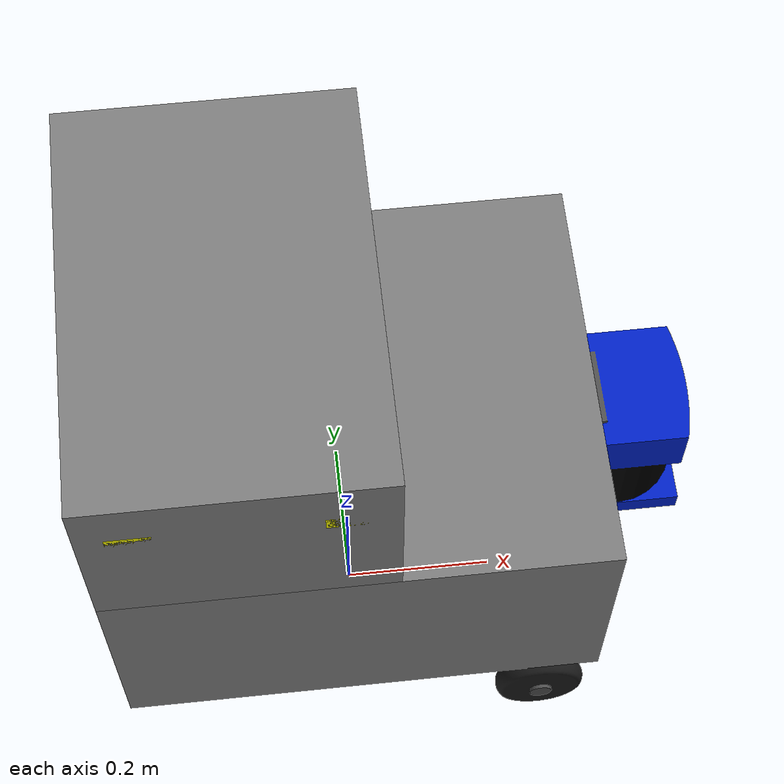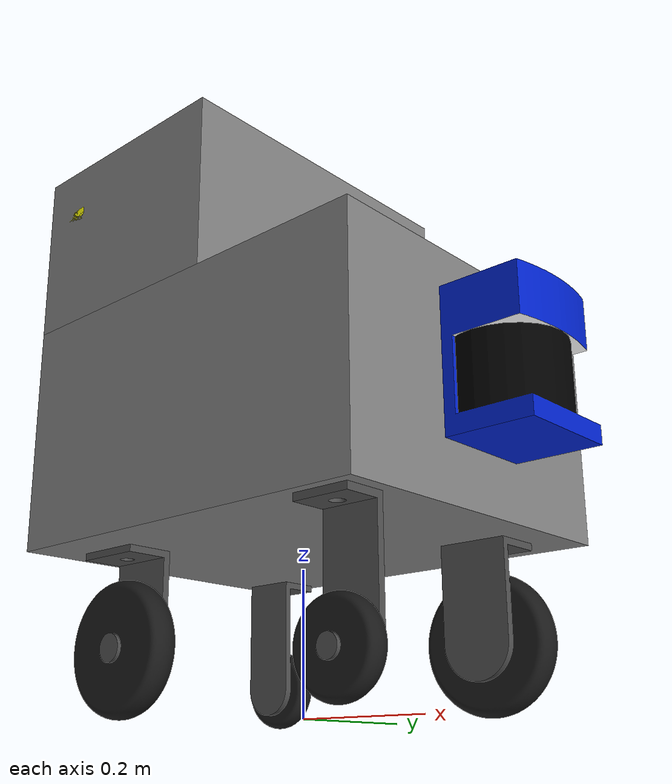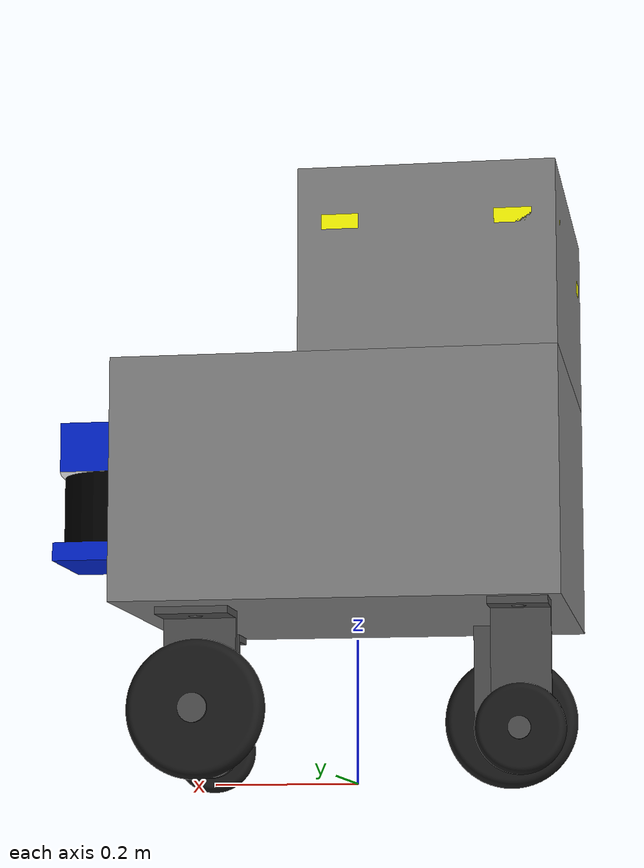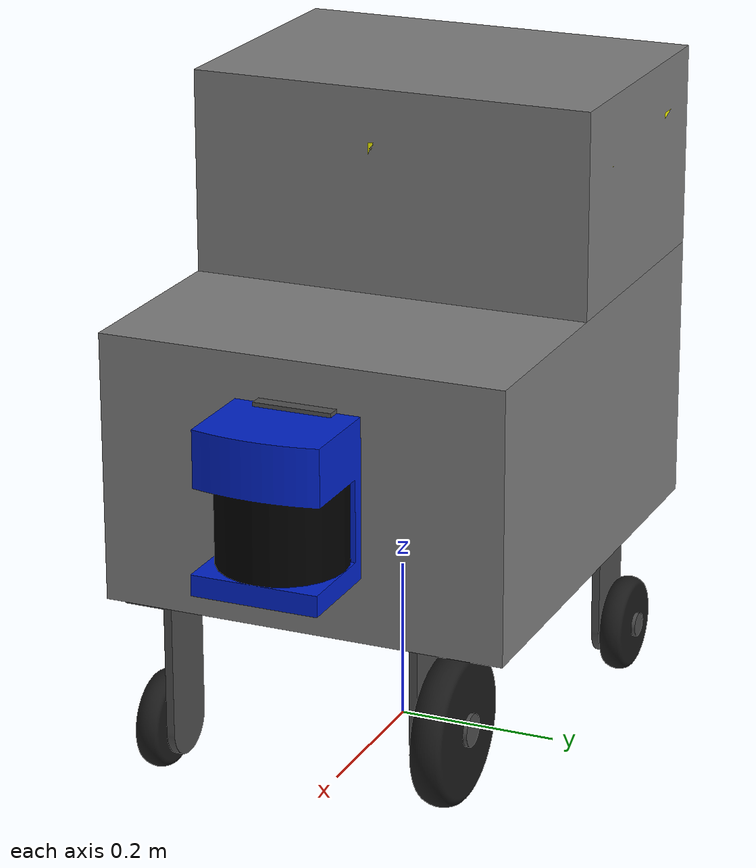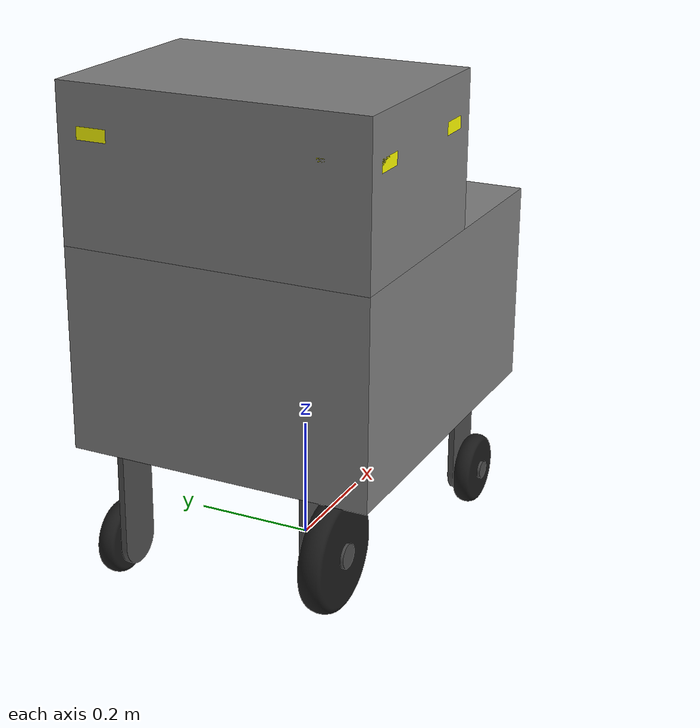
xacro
<?xml version="1.0"?>

<!-- this xacro loads the mobrob robot urdf withouth the gazebo addons -->

<robot name="mobrob_robin" xmlns:xacro="http://ros.org/wiki/xacro">

  <!-- this property deactivates the simulation related macros -->
  <xacro:property name="simulated" value="0" />

  <xacro:property name="ofx" value="0" />
  <xacro:property name="ofy" value="0" />
  <xacro:property name="ofz" value="0" />

  <!-- load the mobrob urdf xacro -->
  <xacro:include filename="$(find mobrob_robin_description)/robots/mobrob.urdf.xacro" />

</robot>

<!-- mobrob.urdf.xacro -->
<!-- this file builds the mobrob urdf via xacro macros -->
<!-- it is used for the real and simulated robot urdf model -->

<robot name="mobrob_robin" xmlns:xacro="http://ros.org/wiki/xacro">

  <xacro:include filename="$(find mobrob_robin_description)/urdf/mobrob_robin.library.xacro" />

  <!-- load the base of the robot   -->
  <xacro:base />

  <!-- load the sick pls 200 -->
  <xacro:sensor_pls200 />

  <!-- load the ultrasound sensors -->
  <xacro:ultrasound_sensor parent="base_link" number="0">
    <insert_block name="ultrasound_sensor0" />
  </xacro:ultrasound_sensor>
  <xacro:ultrasound_sensor parent="base_link" number="1">
    <insert_block name="ultrasound_sensor1" />
  </xacro:ultrasound_sensor>
  <xacro:ultrasound_sensor parent="base_link" number="2">
    <insert_block name="ultrasound_sensor2" />
  </xacro:ultrasound_sensor>
  <xacro:ultrasound_sensor parent="base_link" number="4">
    <insert_block name="ultrasound_sensor4" />
  </xacro:ultrasound_sensor>
  <xacro:ultrasound_sensor parent="base_link" number="5">
    <insert_block name="ultrasound_sensor5" />
  </xacro:ultrasound_sensor>
  <xacro:ultrasound_sensor parent="base_link" number="6">
    <insert_block name="ultrasound_sensor6" />
  </xacro:ultrasound_sensor>
  <xacro:ultrasound_sensor parent="base_link" number="7">
    <insert_block name="ultrasound_sensor7" />
  </xacro:ultrasound_sensor>

</robot>

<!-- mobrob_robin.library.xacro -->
<!--  The complete mobrob library of xacros for easy reference-->

<robot xmlns:xacro="http://ros.org/wiki/xacro">

  <!-- General -->
  <xacro:include filename="$(find mobrob_robin_description)/urdf/mobrob_robin.common.xacro"/>

  <!-- Propertiers -->
  <xacro:include filename="$(find mobrob_robin_description)/urdf/mobrob_robin.properties.xacro"/>
  <!-- Base -->
  <xacro:include filename="$(find mobrob_robin_description)/urdf/mobrob_robin_base/base.urdf.xacro"/>
  <!-- Laserscanner -->
  <xacro:include filename="$(find mobrob_robin_description)/urdf/sensors/pls200.urdf.xacro"/>
  <!-- Ultrasound -->
  <xacro:include filename="$(find mobrob_robin_description)/urdf/sensors/ultrasound.urdf.xacro"/>

  <!-- load gazebo plugins only for simulation -->
  <xacro:if value="${simulated}">
    <xacro:include filename="$(find mobrob_robin_description)/urdf/mobrob_robin.gazebo.xacro"/>
  </xacro:if>

</robot>

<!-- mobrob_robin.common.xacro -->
<!-- This files defines some common properties -->

<robot xmlns:xacro="http://www.ros.org/wiki/xacro">
	<property name="M_PI" value="3.1415926535897931" />

	<material name="Green">
	  <color rgba="0.0 0.8 0.0 1.0"/>
	</material>

  <material name="White">
	<color rgba="1.0 1.0 1.0 1.0"/>
  </material>

  <material name="Gray_light">
	<color rgba="0.5 0.5 0.5 1.0"/>
  </material>

  <material name="Gray_middle">
	<color rgba="0.3 0.3 0.3 1.0"/>
  </material>

  <material name="Gray_dark">
	<color rgba="0.1 0.1 0.1 1.0"/>
  </material>

</robot>

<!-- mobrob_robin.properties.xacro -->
<!-- This file defines all the used parameters for the urdf model -->

<robot xmlns:xacro="http://ros.org/wiki/xacro">
  <!--                               Base Parameter                                      -->

  <property name="base_height" value="0.23" />
  <property name="base_mass" value="40" /><!--TODO-->
  <property name="base_ixx" value="10" /><!--TODO-->
  <property name="base_iyy" value="10" /><!--TODO-->
  <property name="base_izz" value="0.1" /><!--TODO-->
  <!-- simplified box collision geometry for base_body_1 (lower part) -->
  <property name="base_1_size_x" value="0.6" />
  <property name="base_1_size_y" value="0.5" />
  <property name="base_1_size_z" value="0.33" />
  <!-- simplified box collision geometry for base_body_2 (upper part)-->
  <property name="base_2_size_x" value="0.345" />
  <property name="base_2_size_y" value="0.5" />
  <property name="base_2_size_z" value="0.25" />

  <!--                               Wheel Parameter                                      -->

  <!-- all offset parameters are measured to the base_link fram.
        The base_frame is located at the bottom of the mobrob body in the center-->

  <property name="wheel_rf_offset_x" value="0.242" />
  <property name="wheel_rf_offset_y" value="-0.205" />
  <property name="wheel_rf_offset_z" value="-0.170" />
  <property name="wheel_lb_offset_x" value="-0.242" />
  <property name="wheel_lb_offset_y" value="0.205" />
  <property name="wheel_lb_offset_z" value="-0.170" />

  <property name="wheel_lf_offset_x" value="0.20" />
  <property name="wheel_lf_offset_y" value="0.15" />
  <property name="wheel_lf_offset_z" value="-0.135" />
  <property name="wheel_rb_offset_x" value="-0.20" />
  <property name="wheel_rb_offset_y" value="-0.15" />
  <property name="wheel_rb_offset_z" value="-0.135" />

  <property name="wheel_small_radius" value="0.06" />
  <property name="wheel_small_length" value="0.03" />
  <property name="wheel_small_mass" value="0.5" />
  <property name="wheel_small_ixx" value="0.0001" />
  <property name="wheel_small_iyy" value="0.0001" />
  <property name="wheel_small_izz" value="0.0001" />
  <property name="wheel_big_radius" value="0.095" />
  <property name="wheel_big_length" value="0.04" />
  <property name="wheel_big_mass" value="1.0" />
  <property name="wheel_big_ixx" value="0.0001" />
  <property name="wheel_big_iyy" value="0.001202" />
  <property name="wheel_big_izz" value="0.0001" />

  <!--                               Sensor Parameter                                      -->

    <!--This offset parameter(to the base_link) defines the Position of the Kinect(backside, bottom, middle point)-->
  <property name="kinect_offset_x" value="0.3" />
  <property name="kinect_offset_y" value="0" />
  <property name="kinect_offset_z" value="0.275" />
    <!--This offset parameter(to the Base_arduino_platform) defines the Position of the Kinect2(backside,bottom, middle point)-->
  <property name="kinect2_offset_x" value="-0.03" />
  <property name="kinect2_offset_y" value="0" />
  <property name="kinect2_offset_z" value="0.04" />
  <!--This offset parameter(to the base_footprint) defines the Position of the Fake_Laser_Scan-->
  <property name="fake_scan_offset_x" value="0" />
  <property name="fake_scan_offset_y" value="0" />
  <property name="fake_scan_offset_z" value="1.0" />
    <!--This offset parameter defines the Position of the Laser(backside, bottom, middle point)-->
  <property name="laser_offset_x" value="0.26" />
  <property name="laser_offset_y" value="0" />
  <property name="laser_offset_z" value="0.08" />

  <!-- simplified box collision geometry for kinect-->
  <property name="kinect_size_x" value="0.07" />
  <property name="kinect_size_y" value="0.300" />
  <property name="kinect_size_z" value="0.07" />
  <!-- simplified box collision geometry for base_laser-->
  <property name="laser_size_x" value="0.16" />
  <property name="laser_size_y" value="0.155" />
  <property name="laser_size_z" value="0.20" />

  <!--                Additional Object Parameter (additional mass)                     -->

  <property name="add_object_mass" value="0.01" />
  <property name="add_object_ixx" value="0.001" />
  <property name="add_object_iyy" value="0.001" />
  <property name="add_object_izz" value="0.001" />

  <property name="add_object_offset_x" value="0.29" />
  <property name="add_object_offset_y" value="0" />
  <property name="add_object_offset_z" value="0.33" />

  <!-- simplified box collision geometry for additional object-->
  <property name="add_object_size_x" value="0.02" />
  <property name="add_object_size_y" value="0.02" />
  <property name="add_object_size_z" value="0.02" />

    <!--                Kinect Arduino Parameter                      --> <!--TODO-->

  <!--                Base arduino (staff)                      -->
  <property name="base_arduino_mass" value="0.01" />
  <property name="base_arduino_ixx" value="0.001" />
  <property name="base_arduino_iyy" value="0.001" />
  <property name="base_arduino_izz" value="0.001" />

  <property name="base_arduino_offset_x" value="0.07" />
  <property name="base_arduino_offset_y" value="0" />
  <property name="base_arduino_offset_z" value="1.2" />

  <!-- simplified box collision geometry for base staff of the arduino board-->
  <property name="base_arduino_size_x" value="0.04" />
  <property name="base_arduino_size_y" value="0.04" />
  <property name="base_arduino_size_z" value="1.2" />

  <property name="base_arduino_platform_mass" value="0.01" />
  <property name="base_arduino_platform_ixx" value="0.001" />
  <property name="base_arduino_platform_iyy" value="0.001" />
  <property name="base_arduino_platform_izz" value="0.001" />

  <property name="base_arduino_platform_offset_x" value="-0.007" />
  <property name="base_arduino_platform_offset_y" value="0.033" />
  <property name="base_arduino_platform_offset_z" value="0.02" />

  <!-- simplified box collision geometry for base staff of the arduino board-->
  <property name="base_arduino_platform_size_x" value="0.04" />
  <property name="base_arduino_platform_size_y" value="0.08" />
  <property name="base_arduino_platform_size_z" value="0.003" />

  <property name="base_arduino_pitch" value="25" /><!--degree-->,

  <property name="ultrasound_z" value="${0.810-0.075}"/>
  <property name="ultrasound_back_front_y" value="${0.25-0.057}"/> <!--offset for the sensors on the side -->
  <property name="ultrasound_back_x" value="${-0.3+0.01}" />
  <property name="ultrasound_front_x" value="${-0.3+0.345-0.01}" />
  <property name="ultrasound_left_right_y" value="${0.25-0.01}" />
  <property name="ultrasound_back_side_x" value="${-0.3+0.057}" />
  <property name="ultrasound_front_side_x" value="${-0.3+0.345-0.057}" />

  <xacro:property name="ultrasound_sensor0"> <!-- lb back -->
    <origin xyz="${ultrasound_back_x} ${ultrasound_back_front_y} ${ultrasound_z}" rpy="0 0 ${M_PI}"/>
  </xacro:property>
  <xacro:property name="ultrasound_sensor1"> <!-- lb left -->
    <origin xyz="${ultrasound_back_side_x} ${ultrasound_left_right_y} ${ultrasound_z}" rpy="0 0 ${M_PI/2}"/>
  </xacro:property>
  <xacro:property name="ultrasound_sensor2"> <!-- lf left -->
    <origin xyz="${ultrasound_front_side_x} ${ultrasound_left_right_y} ${ultrasound_z}" rpy="0 0 ${M_PI/2}"/>
  </xacro:property>
  <xacro:property name="ultrasound_sensor4"> <!-- middle front -->
    <origin xyz="${ultrasound_front_x} 0.0 ${ultrasound_z}" rpy="0 0 ${0}"/>
  </xacro:property>

  <xacro:property name="ultrasound_sensor5"> <!-- rf right -->
    <origin xyz="${ultrasound_front_side_x} ${-ultrasound_left_right_y} ${ultrasound_z}" rpy="0 0 ${3*M_PI/2}"/>
  </xacro:property>
  <xacro:property name="ultrasound_sensor6"> <!-- rb right -->
    <origin xyz="${ultrasound_back_side_x} ${-ultrasound_left_right_y} ${ultrasound_z}" rpy="0 0 ${3*M_PI/2}"/>
  </xacro:property>
  <xacro:property name="ultrasound_sensor7"> <!-- rb back -->
    <origin xyz="${ultrasound_back_x} ${-ultrasound_back_front_y} ${ultrasound_z}" rpy="0 0 ${M_PI}"/>
  </xacro:property>

</robot>

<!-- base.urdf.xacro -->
<!-- This maco defines the robots base body -->
<!-- Starting from the odom frame a x y prismatic joint is added for the xy movement -->
<!-- A yaw rotary joint follows for rotations around the z axis -->
<!-- After that the base_link and base_upper joint define the two boxes for the body -->
<!-- The rest of the file describes the wheel of the robot -->

<robot xmlns:xacro="http://ros.org/wiki/xacro">
   <xacro:include filename="$(find mobrob_robin_description)/urdf/mobrob_robin_base/base.transmission.xacro" />
   <xacro:macro name="base" params="">
      <link name="odom">

         <inertial>
            <mass value="1" />
            <origin xyz="0.0 0.0 0.0" rpy="0 0 0" />
            <inertia ixx="0.1" ixy="0.0" ixz="0.0" iyy="0.1" iyz="0.0" izz="0.1" />
         </inertial>

      </link>
      <joint name="base_x_joint" type="prismatic">
         <origin xyz="0 0 0" rpy="0 0 0" />
         <axis xyz="1 0 0" />
         <dynamics damping="0.0" friction="0.0" />
         <calibration rising="0.0" falling="0.0" />
         <limit effort="10" velocity="1.0" lower="-100" upper="100" />
         <parent link="odom" />
         <child link="base_x_link" />
      </joint>
      <link name="base_x_link">
         <inertial>
            <mass value="1" />
            <origin xyz="0 0 0.0" />
            <inertia ixx="0.1" ixy="0.0" ixz="0.0" iyy="0.1" iyz="0.0" izz="0.1" />
         </inertial>
      </link>
      <joint name="base_y_joint" type="prismatic">
         <origin xyz="0 0 0" rpy="0 0 0" />
         <axis xyz="0 1 0" />
         <dynamics damping="0.0" friction="0.0" />
         <limit effort="10" velocity="1.0" lower="-100" upper="100" />
         <parent link="base_x_link" />
         <child link="base_y_link" />
      </joint>
      <link name="base_y_link">
         <inertial>
            <mass value="1" />
            <origin xyz="0.0 0.0 0.0" rpy="0 0 0" />
            <inertia ixx="0.1" ixy="0.0" ixz="0.0" iyy="0.1" iyz="0.0" izz="0.1" />
         </inertial>
      </link>

      <joint name="base_yaw_joint" type="continuous">
         <origin xyz="0 0 0" rpy="0 0 0" />
         <axis xyz="0 0 1" />
         <dynamics damping="0.0" friction="0.0" />
         <limit effort="10" velocity="1.0" lower="-100" upper="100"/>
         <parent link="base_y_link" />
         <child link="base_link" />
      </joint>

  <link name="base_link">
    <inertial>
      <mass value="${base_mass}" />
      <origin xyz="0 0 ${base_height}" />
      <inertia ixx="${base_ixx}" ixy="0.0" ixz="0.0"
        iyy="${base_iyy}" iyz="0.0" izz="${base_izz}" />
    </inertial>

    <visual>
      <origin xyz=" 0 0 ${base_1_size_z/2 + base_height}" rpy="0 0 0" />
      <geometry>
        <box size="${base_1_size_x} ${base_1_size_y} ${base_1_size_z}" />
      </geometry>
      <material name="Gray_light" />
    </visual>

    <collision>
      <origin xyz="0 0 ${base_1_size_z/2}" rpy="0 0 0" />
      <geometry>
        <box size="${base_1_size_x} ${base_1_size_y} ${base_1_size_z}" />
      </geometry>
    </collision>
  </link>

  <joint name="base_upper_joint" type="fixed">
    <origin xyz="${base_2_size_x / 2 - base_1_size_x / 2} 0 ${base_1_size_z + base_height}" rpy="0 0 0" />
    <parent link="base_link"/>
    <child link="base_upper_body" />
  </joint>

  <link name="base_upper_body">
    <inertial>
      <mass value="0.0001" />
      <origin xyz="0 0 0.0" />
      <inertia ixx="0.0001" ixy="0.0" ixz="0.0"
        iyy="0.0001" iyz="0.0" izz="0.0001" />
    </inertial>

    <visual>
      <origin xyz=" 0 0 ${base_2_size_z/2}" rpy="0 0 0" />
      <geometry>
        <box size="${base_2_size_x} ${base_2_size_y} ${base_2_size_z}" />
      </geometry>
      <material name="Gray_light" />
    </visual>

    <collision>
      <origin xyz="0 0 ${base_2_size_z/2}" rpy="0 0 0" />
      <geometry>
        <box size="${base_2_size_x} ${base_2_size_y} ${base_2_size_z}" />
      </geometry>
    </collision>
  </link>

  <!--                         Wheel definition rotation z-axis                                        -->

  <!--wheel right front rotation z-axis-->
  <joint name="wheel_rf_rot_z_joint" type="fixed">
    <origin xyz="${wheel_rf_offset_x} ${wheel_rf_offset_y}  ${base_height}" rpy="0 0 0"/>
    <parent link="base_link"/>
    <child link="wheel_rf_rot_z"/>
  </joint>

  <link name="wheel_rf_rot_z">
    <inertial>
      <origin xyz="0 0 0"/>
      <mass value="1.0" />
      <inertia ixx="0.001" ixy="0.0" ixz="0.0"
        iyy="0.001" iyz="0.0" izz="0.001" />
    </inertial>

    <visual>
      <origin xyz="0 0 0" rpy="0 0 ${M_PI}" />
      <geometry>
        <mesh scale="0.01 0.01 0.01 " filename="package://mobrob_robin_description/meshes/wheel_suspension_small_long.stl"/>
      </geometry>
      <material name="Gray_middle" />
    </visual>

    <collision>
      <origin xyz="0 0 0" rpy="0 0 ${M_PI}" />
      <geometry>
        <mesh scale="0.01 0.01 0.01 " filename="package://mobrob_robin_description/meshes/wheel_suspension_small_long.stl"/>
      </geometry>
    </collision>
  </link>

    <!--wheel left back rotation z-axis-->
  <joint name="wheel_lb_rot_z_joint" type="fixed">
    <origin xyz="${wheel_lb_offset_x} ${wheel_lb_offset_y} ${base_height}" rpy="0 0 0"/>
    <parent link="base_link"/>
    <child link="wheel_lb_rot_z"/>
  </joint>

  <link name="wheel_lb_rot_z">
    <inertial>
      <origin xyz="0 0 0"/>
      <mass value="1.0" />
      <inertia ixx="0.001" ixy="0.0" ixz="0.0"
        iyy="0.001" iyz="0.0" izz="0.001" />
    </inertial>

    <visual>
      <origin xyz="0 0 0" rpy="0 0 0" />
      <geometry>
        <mesh scale="0.01 0.01 0.01 " filename="package://mobrob_robin_description/meshes/wheel_suspension_small_long.stl"/>
      </geometry>
      <material name="Gray_middle" />
    </visual>

    <collision>
      <origin xyz="0 0 0" rpy="0 0 0" />
      <geometry>
        <mesh scale="0.01 0.01 0.01 " filename="package://mobrob_robin_description/meshes/wheel_suspension_small_long.stl"/>
      </geometry>
    </collision>
  </link>

  <!--wheel left front rotation z-axis-->
  <joint name="wheel_lf_rot_z_joint" type="continuous">
	<dynamics damping="1.0" friction="0.0" />
    <origin xyz="${wheel_lf_offset_x} ${wheel_lf_offset_y} ${base_height}" rpy="0 0 0"/>
    <parent link="base_link"/>
    <child link="wheel_lf_rot_z"/>
    <axis xyz="0 0 1"/>
  </joint>

  <link name="wheel_lf_rot_z">
    <inertial>
      <origin xyz="0 0 0"/>
      <mass value="1.0" />
      <inertia ixx="0.001" ixy="0.0" ixz="0.0"
        iyy="0.001" iyz="0.0" izz="0.001" />
    </inertial>

    <visual>
      <origin xyz="0 0 0" rpy="0 0 0" />
      <geometry>
        <mesh scale="0.01 0.01 0.01 " filename="package://mobrob_robin_description/meshes/wheel_suspension_big.stl"/>
      </geometry>
      <material name="Gray_middle" />
    </visual>

    <collision>
      <origin xyz="0 0 0" rpy="0 0 0" />
      <geometry>
        <mesh scale="0.01 0.01 0.01 " filename="package://mobrob_robin_description/meshes/wheel_suspension_big.stl"/>
      </geometry>
    </collision>
  </link>

  <!--wheel right back rotation z-axis-->
  <joint name="wheel_rb_rot_z_joint" type="continuous">
	<dynamics damping="1.0" friction="0.0" />
    <origin xyz="${wheel_rb_offset_x} ${wheel_rb_offset_y} ${base_height}" rpy="0 0 0"/>
    <parent link="base_link"/>
    <child link="wheel_rb_rot_z"/>
    <axis xyz="0 0 1"/>
  </joint>

  <link name="wheel_rb_rot_z">
    <inertial>
      <origin xyz="0 0 0"/>
      <mass value="0.001" />
      <inertia ixx="0.001" ixy="0.0" ixz="0.0"
        iyy="0.001" iyz="0.0" izz="0.001" />
    </inertial>

    <visual>
      <origin xyz="0 0 0" rpy="0 0 ${M_PI}" />
      <geometry>
        <mesh scale="0.01 0.01 0.01 " filename="package://mobrob_robin_description/meshes/wheel_suspension_big.stl"/>
      </geometry>
      <material name="Gray_middle" />
    </visual>

    <collision>
      <origin xyz="0 0 0" rpy="0 0 ${M_PI}" />
      <geometry>
        <mesh scale="0.01 0.01 0.01 " filename="package://mobrob_robin_description/meshes/wheel_suspension_big.stl"/>
      </geometry>
    </collision>
  </link>

    <!--                         Wheel definition rotation y-axis                                        -->

    <!--wheel right front rotation y-axis-->
	<joint name="wheel_rf_rot_y_joint" type="fixed">
     <origin xyz="0 0 ${wheel_rf_offset_z}" rpy="0 0 0"/>
     <parent link="wheel_rf_rot_z"/>
     <child link="wheel_rf_rot_y"/>
	</joint>

    <link name="wheel_rf_rot_y">
    <inertial>
      <origin xyz="0 0 0"/>
      <mass value="${wheel_small_mass}" />
      <inertia ixx="${wheel_small_ixx}" ixy="0.0" ixz="0.0"
        iyy="${wheel_small_iyy}" iyz="0.0" izz="${wheel_small_izz}" />
    </inertial>

    <visual>
      <origin xyz="0 0 0" rpy="0 0 ${M_PI/2}" />
      <geometry>
        <mesh scale="0.01 0.01 0.01 " filename="package://mobrob_robin_description/meshes/wheel_small.stl"/>
      </geometry>
      <material name="Gray_dark" />
    </visual>

    <collision>
      <origin xyz="0 0 0" rpy="${M_PI/2} 0 0" />
      <geometry>
        <cylinder radius="${wheel_small_radius}" length = "${wheel_small_length}"/>
      </geometry>
    </collision>
  </link>

     <!--wheel left back rotation y-axis-->
    <joint name="wheel_lb_rot_y_joint" type="fixed">
		<origin xyz="0 0 ${wheel_lb_offset_z}" rpy="0 0 0"/>
		<parent link="wheel_lb_rot_z"/>
		<child link="wheel_lb_rot_y"/>
	</joint>

    <link name="wheel_lb_rot_y">
    <inertial>
      <origin xyz="0 0 0"/>
      <mass value="${wheel_small_mass}" />
      <inertia ixx="${wheel_small_ixx}" ixy="0.0" ixz="0.0"
        iyy="${wheel_small_iyy}" iyz="0.0" izz="${wheel_small_izz}" />
    </inertial>

    <visual>
      <origin xyz="0 0 0" rpy="0 0 ${M_PI/2}" />
      <geometry>
        <mesh scale="0.01 0.01 0.01 " filename="package://mobrob_robin_description/meshes/wheel_small.stl"/>
      </geometry>
      <material name="Gray_dark" />
    </visual>

    <collision>
      <origin xyz="0 0 0" rpy="${M_PI/2} 0 0" />
      <geometry>
        <cylinder radius="${wheel_small_radius}" length = "${wheel_small_length}"/>
      </geometry>
    </collision>
  </link>

       <!--wheel left front rotation y-axis-->
    <joint name="wheel_lf_rot_y_joint" type="fixed">
		<origin xyz="0 0 ${wheel_lf_offset_z}" rpy="0 0 0"/>
		<parent link="wheel_lf_rot_z"/>
		<child link="wheel_lf_rot_y"/>
	</joint>

  <link name="wheel_lf_rot_y">
    <inertial>
      <origin xyz="0 0 0"/>
      <mass value="${wheel_big_mass}" />
      <inertia ixx="${wheel_big_ixx}" ixy="0.0" ixz="0.0"
        iyy="${wheel_big_iyy}" iyz="0.0" izz="${wheel_big_izz}" />
    </inertial>

    <visual>
      <origin xyz="0 0 0" rpy="0 0 ${M_PI/2}" />
      <geometry>
        <mesh scale="0.01 0.01 0.01 " filename="package://mobrob_robin_description/meshes/wheel_big.stl"/>
      </geometry>
      <material name="Gray_dark" />
    </visual>

    <collision>
      <origin xyz="0 0 0" rpy="${M_PI/2} 0 0" />
      <geometry>
        <cylinder radius="${wheel_big_radius}" length = "${wheel_big_length}"/>
      </geometry>
    </collision>
  </link>

         <!--wheel right back rotation y-axis-->
    <joint name="wheel_rb_rot_y_joint" type="fixed">
		<origin xyz="0 0 ${wheel_rb_offset_z}" rpy="0 0 0"/>
		<parent link="wheel_rb_rot_z"/>
		<child link="wheel_rb_rot_y"/>
	</joint>

  <link name="wheel_rb_rot_y">
    <inertial>
      <origin xyz="0 0 0"/>
      <mass value="${wheel_big_mass}" />
      <inertia ixx="${wheel_big_ixx}" ixy="0.0" ixz="0.0"
        iyy="${wheel_big_iyy}" iyz="0.0" izz="${wheel_big_izz}" />
    </inertial>

    <visual>
      <origin xyz="0 0 0" rpy="0 0 ${M_PI/2}" />
      <geometry>
        <mesh scale="0.01 0.01 0.01 " filename="package://mobrob_robin_description/meshes/wheel_big.stl"/>
      </geometry>
      <material name="Gray_dark" />
    </visual>

    <collision>
      <origin xyz="0 0 0" rpy="${M_PI/2} 0 0" />
      <geometry>
        <cylinder radius="${wheel_big_radius}" length = "${wheel_big_length}"/>
      </geometry>
    </collision>
  </link>

  <xacro:if value="${simulated}">
	<xacro:mobrob_transmission />
  </xacro:if>

   </xacro:macro>
</robot>

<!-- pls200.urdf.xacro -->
<!-- This file defines the Sick PLS200 visuals -->

<robot xmlns:xacro="http://ros.org/wiki/xacro">

	<xacro:if value="${simulated}">
		<xacro:include filename="$(find mobrob_robin_description)/urdf/sensors/pls200.gazebo.xacro"/>
	</xacro:if>

	<xacro:macro name="sensor_pls200" params="">

	<joint name="laser_PLS200_root_joint" type="fixed">
		<origin xyz="${laser_offset_x} ${laser_offset_y} ${laser_offset_z + base_height}" rpy="0 0 0" />
		<parent link="base_link" />
		<child link="laser_PLS200_root" />
	</joint>

	<link name="laser_PLS200_root">
		<inertial>
		  <mass value="0.01" />
		  <origin xyz="0 0 0" />
		  <inertia ixx="0.001" ixy="0.0" ixz="0.0"
			iyy="0.001" iyz="0.0"
			izz="0.001" />
		</inertial>

		<visual>
		  <origin rpy="0 0 0" xyz="${laser_size_x/2} 0 0"/>
		  <geometry>
			<mesh  scale="1 1 1" filename="package://mobrob_robin_description/meshes/bot_PLS200.dae"/>
		  </geometry>
		</visual>

		<collision>
		  <origin xyz="${laser_size_x/2} 0 ${laser_size_z/2}" rpy="0 0 0" />
		  <geometry>
			<box size="${laser_size_x} ${laser_size_y} ${laser_size_z}"/>
		  </geometry>
		</collision>
	  </link>

	  <link name="PLS200">
		<inertial>
		  <mass value="0.01" />
		  <origin xyz="0 0 0" />
		  <inertia ixx="0.001" ixy="0.0" ixz="0.0"
			iyy="0.001" iyz="0.0"
			izz="0.001" />
		</inertial>
	  </link>

	  <joint name="PLS200_joint" type="fixed">
		<origin xyz="0.1 0.0 0.065" rpy="0.0 0.0 0.0" /><!--default x 0.155-->
		<parent link="laser_PLS200_root" />
		<child link="PLS200" />
	  </joint>

	 </xacro:macro>

</robot>

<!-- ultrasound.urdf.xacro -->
<!-- This file defines the ultrasound sensors form and color -->

<robot xmlns:xacro="http://ros.org/wiki/xacro">

	<xacro:macro name="ultrasound_sensor" params="number parent *origin">

		<joint name="base_to_ultrasound_sensor${number}" type="fixed" >
			<insert_block name="origin" />
			<parent link="${parent}" />
			<child link="US${number}_link" />
		</joint>

		<link name="US${number}_link">
			<inertial>
				<mass value="0.1" />
				<origin xyz="0 0.0 0.0" />
				<inertia ixx="0.0" ixy="0.0" ixz="0.0"	iyy="0.0" iyz="0.0" izz="0.0" />
			</inertial>

			<visual>
				<origin xyz="0 0 0" rpy="0 0 0" />
				<geometry>
					<box size="0.02 0.05 0.02" />
				</geometry>
                <material name="yellow">
                    <color rgba="1.0 1.0 0 1"/>
                </material>
			</visual>

			<collision>
				<origin xyz="0 0 0" rpy="0 0 0" />
				<geometry>
					<box size="0.02 0.05 0.02" />
				</geometry>
			</collision>
		</link>

   </xacro:macro>
</robot>
